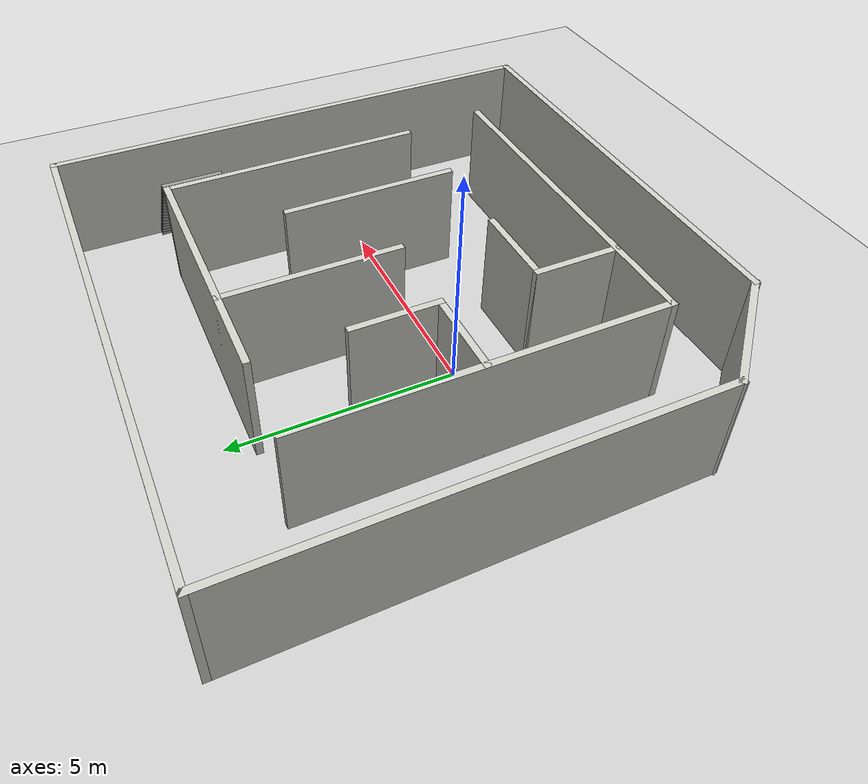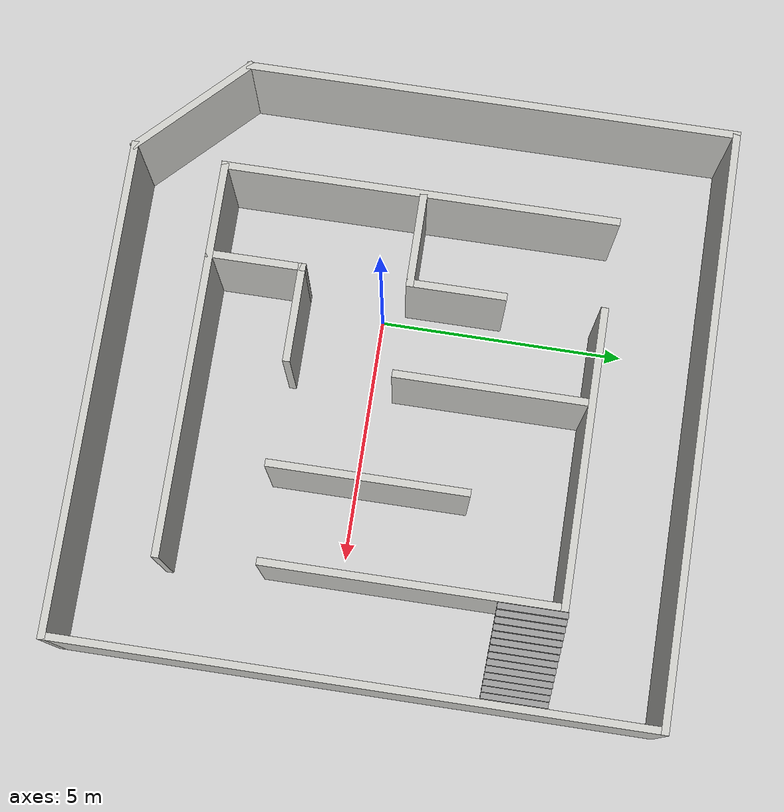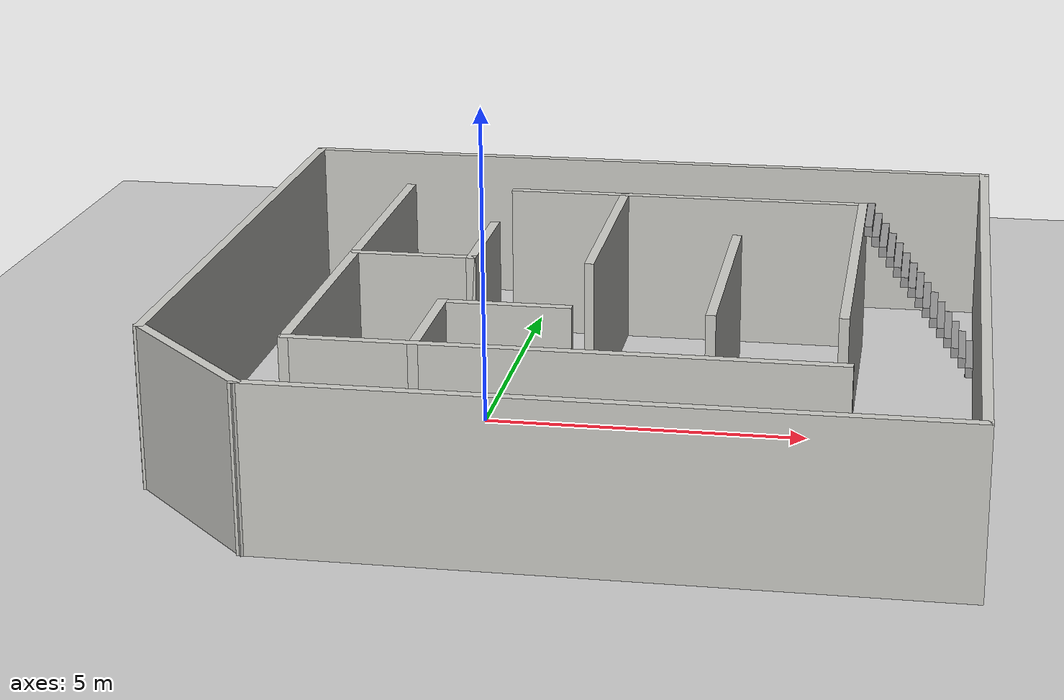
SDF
<sdf version='1.7'>
  <world name='default'>
    <include>
      <uri>model://ground_plane</uri>
    </include>

    <model name='gazebo_simplemaze'>
      <pose>1.62278 0.580179 0 0 -0 0</pose>
      <link name='Stairs_2'>
        <visual name='Stairs_2_Visual_0'>
          <pose>5.80485 3.1923 0.083333 0 -0 -1.5708</pose>
          <geometry>
            <box>
              <size>1.36518 0.122891 0.166667</size>
            </box>
          </geometry>
          <material>
            <script>
              <uri>file://media/materials/scripts/gazebo.material</uri>
              <name>Gazebo/Grey</name>
            </script>
            <ambient>1 1 1 1</ambient>
          </material>
          <meta>
            <layer>0</layer>
          </meta>
        </visual>
        <collision name='Stairs_2_Collision_0'>
          <geometry>
            <box>
              <size>1.36518 0.122891 0.166667</size>
            </box>
          </geometry>
          <pose>5.80485 3.1923 0.083333 0 -0 -1.5708</pose>
        </collision>
        <visual name='Stairs_2_Visual_1'>
          <pose>5.68196 3.1923 0.25 0 -0 -1.5708</pose>
          <geometry>
            <box>
              <size>1.36518 0.122891 0.166667</size>
            </box>
          </geometry>
          <material>
            <script>
              <uri>file://media/materials/scripts/gazebo.material</uri>
              <name>Gazebo/Grey</name>
            </script>
            <ambient>1 1 1 1</ambient>
          </material>
          <meta>
            <layer>0</layer>
          </meta>
        </visual>
        <collision name='Stairs_2_Collision_1'>
          <geometry>
            <box>
              <size>1.36518 0.122891 0.166667</size>
            </box>
          </geometry>
          <pose>5.68196 3.1923 0.25 0 -0 -1.5708</pose>
        </collision>
        <visual name='Stairs_2_Visual_2'>
          <pose>5.55907 3.1923 0.416667 0 -0 -1.5708</pose>
          <geometry>
            <box>
              <size>1.36518 0.122891 0.166667</size>
            </box>
          </geometry>
          <material>
            <script>
              <uri>file://media/materials/scripts/gazebo.material</uri>
              <name>Gazebo/Grey</name>
            </script>
            <ambient>1 1 1 1</ambient>
          </material>
          <meta>
            <layer>0</layer>
          </meta>
        </visual>
        <collision name='Stairs_2_Collision_2'>
          <geometry>
            <box>
              <size>1.36518 0.122891 0.166667</size>
            </box>
          </geometry>
          <pose>5.55907 3.1923 0.416667 0 -0 -1.5708</pose>
        </collision>
        <visual name='Stairs_2_Visual_3'>
          <pose>5.43617 3.1923 0.583333 0 -0 -1.5708</pose>
          <geometry>
            <box>
              <size>1.36518 0.122891 0.166667</size>
            </box>
          </geometry>
          <material>
            <script>
              <uri>file://media/materials/scripts/gazebo.material</uri>
              <name>Gazebo/Grey</name>
            </script>
            <ambient>1 1 1 1</ambient>
          </material>
          <meta>
            <layer>0</layer>
          </meta>
        </visual>
        <collision name='Stairs_2_Collision_3'>
          <geometry>
            <box>
              <size>1.36518 0.122891 0.166667</size>
            </box>
          </geometry>
          <pose>5.43617 3.1923 0.583333 0 -0 -1.5708</pose>
        </collision>
        <visual name='Stairs_2_Visual_4'>
          <pose>5.31328 3.1923 0.75 0 -0 -1.5708</pose>
          <geometry>
            <box>
              <size>1.36518 0.122891 0.166667</size>
            </box>
          </geometry>
          <material>
            <script>
              <uri>file://media/materials/scripts/gazebo.material</uri>
              <name>Gazebo/Grey</name>
            </script>
            <ambient>1 1 1 1</ambient>
          </material>
          <meta>
            <layer>0</layer>
          </meta>
        </visual>
        <collision name='Stairs_2_Collision_4'>
          <geometry>
            <box>
              <size>1.36518 0.122891 0.166667</size>
            </box>
          </geometry>
          <pose>5.31328 3.1923 0.75 0 -0 -1.5708</pose>
        </collision>
        <visual name='Stairs_2_Visual_5'>
          <pose>5.19039 3.1923 0.916667 0 -0 -1.5708</pose>
          <geometry>
            <box>
              <size>1.36518 0.122891 0.166667</size>
            </box>
          </geometry>
          <material>
            <script>
              <uri>file://media/materials/scripts/gazebo.material</uri>
              <name>Gazebo/Grey</name>
            </script>
            <ambient>1 1 1 1</ambient>
          </material>
          <meta>
            <layer>0</layer>
          </meta>
        </visual>
        <collision name='Stairs_2_Collision_5'>
          <geometry>
            <box>
              <size>1.36518 0.122891 0.166667</size>
            </box>
          </geometry>
          <pose>5.19039 3.1923 0.916667 0 -0 -1.5708</pose>
        </collision>
        <visual name='Stairs_2_Visual_6'>
          <pose>5.0675 3.1923 1.08333 0 -0 -1.5708</pose>
          <geometry>
            <box>
              <size>1.36518 0.122891 0.166667</size>
            </box>
          </geometry>
          <material>
            <script>
              <uri>file://media/materials/scripts/gazebo.material</uri>
              <name>Gazebo/Grey</name>
            </script>
            <ambient>1 1 1 1</ambient>
          </material>
          <meta>
            <layer>0</layer>
          </meta>
        </visual>
        <collision name='Stairs_2_Collision_6'>
          <geometry>
            <box>
              <size>1.36518 0.122891 0.166667</size>
            </box>
          </geometry>
          <pose>5.0675 3.1923 1.08333 0 -0 -1.5708</pose>
        </collision>
        <visual name='Stairs_2_Visual_7'>
          <pose>4.94461 3.1923 1.25 0 -0 -1.5708</pose>
          <geometry>
            <box>
              <size>1.36518 0.122891 0.166667</size>
            </box>
          </geometry>
          <material>
            <script>
              <uri>file://media/materials/scripts/gazebo.material</uri>
              <name>Gazebo/Grey</name>
            </script>
            <ambient>1 1 1 1</ambient>
          </material>
          <meta>
            <layer>0</layer>
          </meta>
        </visual>
        <collision name='Stairs_2_Collision_7'>
          <geometry>
            <box>
              <size>1.36518 0.122891 0.166667</size>
            </box>
          </geometry>
          <pose>4.94461 3.1923 1.25 0 -0 -1.5708</pose>
        </collision>
        <visual name='Stairs_2_Visual_8'>
          <pose>4.82172 3.1923 1.41667 0 -0 -1.5708</pose>
          <geometry>
            <box>
              <size>1.36518 0.122891 0.166667</size>
            </box>
          </geometry>
          <material>
            <script>
              <uri>file://media/materials/scripts/gazebo.material</uri>
              <name>Gazebo/Grey</name>
            </script>
            <ambient>1 1 1 1</ambient>
          </material>
          <meta>
            <layer>0</layer>
          </meta>
        </visual>
        <collision name='Stairs_2_Collision_8'>
          <geometry>
            <box>
              <size>1.36518 0.122891 0.166667</size>
            </box>
          </geometry>
          <pose>4.82172 3.1923 1.41667 0 -0 -1.5708</pose>
        </collision>
        <visual name='Stairs_2_Visual_9'>
          <pose>4.69883 3.1923 1.58333 0 -0 -1.5708</pose>
          <geometry>
            <box>
              <size>1.36518 0.122891 0.166667</size>
            </box>
          </geometry>
          <material>
            <script>
              <uri>file://media/materials/scripts/gazebo.material</uri>
              <name>Gazebo/Grey</name>
            </script>
            <ambient>1 1 1 1</ambient>
          </material>
          <meta>
            <layer>0</layer>
          </meta>
        </visual>
        <collision name='Stairs_2_Collision_9'>
          <geometry>
            <box>
              <size>1.36518 0.122891 0.166667</size>
            </box>
          </geometry>
          <pose>4.69883 3.1923 1.58333 0 -0 -1.5708</pose>
        </collision>
        <visual name='Stairs_2_Visual_10'>
          <pose>4.57594 3.1923 1.75 0 -0 -1.5708</pose>
          <geometry>
            <box>
              <size>1.36518 0.122891 0.166667</size>
            </box>
          </geometry>
          <material>
            <script>
              <uri>file://media/materials/scripts/gazebo.material</uri>
              <name>Gazebo/Grey</name>
            </script>
            <ambient>1 1 1 1</ambient>
          </material>
          <meta>
            <layer>0</layer>
          </meta>
        </visual>
        <collision name='Stairs_2_Collision_10'>
          <geometry>
            <box>
              <size>1.36518 0.122891 0.166667</size>
            </box>
          </geometry>
          <pose>4.57594 3.1923 1.75 0 -0 -1.5708</pose>
        </collision>
        <visual name='Stairs_2_Visual_11'>
          <pose>4.45305 3.1923 1.91667 0 -0 -1.5708</pose>
          <geometry>
            <box>
              <size>1.36518 0.122891 0.166667</size>
            </box>
          </geometry>
          <material>
            <script>
              <uri>file://media/materials/scripts/gazebo.material</uri>
              <name>Gazebo/Grey</name>
            </script>
            <ambient>1 1 1 1</ambient>
          </material>
          <meta>
            <layer>0</layer>
          </meta>
        </visual>
        <collision name='Stairs_2_Collision_11'>
          <geometry>
            <box>
              <size>1.36518 0.122891 0.166667</size>
            </box>
          </geometry>
          <pose>4.45305 3.1923 1.91667 0 -0 -1.5708</pose>
        </collision>
        <visual name='Stairs_2_Visual_12'>
          <pose>4.33016 3.1923 2.08333 0 -0 -1.5708</pose>
          <geometry>
            <box>
              <size>1.36518 0.122891 0.166667</size>
            </box>
          </geometry>
          <material>
            <script>
              <uri>file://media/materials/scripts/gazebo.material</uri>
              <name>Gazebo/Grey</name>
            </script>
            <ambient>1 1 1 1</ambient>
          </material>
          <meta>
            <layer>0</layer>
          </meta>
        </visual>
        <collision name='Stairs_2_Collision_12'>
          <geometry>
            <box>
              <size>1.36518 0.122891 0.166667</size>
            </box>
          </geometry>
          <pose>4.33016 3.1923 2.08333 0 -0 -1.5708</pose>
        </collision>
        <visual name='Stairs_2_Visual_13'>
          <pose>4.20727 3.1923 2.25 0 -0 -1.5708</pose>
          <geometry>
            <box>
              <size>1.36518 0.122891 0.166667</size>
            </box>
          </geometry>
          <material>
            <script>
              <uri>file://media/materials/scripts/gazebo.material</uri>
              <name>Gazebo/Grey</name>
            </script>
            <ambient>1 1 1 1</ambient>
          </material>
          <meta>
            <layer>0</layer>
          </meta>
        </visual>
        <collision name='Stairs_2_Collision_13'>
          <geometry>
            <box>
              <size>1.36518 0.122891 0.166667</size>
            </box>
          </geometry>
          <pose>4.20727 3.1923 2.25 0 -0 -1.5708</pose>
        </collision>
        <visual name='Stairs_2_Visual_14'>
          <pose>4.08437 3.1923 2.41667 0 -0 -1.5708</pose>
          <geometry>
            <box>
              <size>1.36518 0.122891 0.166667</size>
            </box>
          </geometry>
          <material>
            <script>
              <uri>file://media/materials/scripts/gazebo.material</uri>
              <name>Gazebo/Grey</name>
            </script>
            <ambient>1 1 1 1</ambient>
          </material>
          <meta>
            <layer>0</layer>
          </meta>
        </visual>
        <collision name='Stairs_2_Collision_14'>
          <geometry>
            <box>
              <size>1.36518 0.122891 0.166667</size>
            </box>
          </geometry>
          <pose>4.08437 3.1923 2.41667 0 -0 -1.5708</pose>
        </collision>
      </link>
      <link name='Wall_100'>
        <collision name='Wall_100_Collision'>
          <geometry>
            <box>
              <size>6 0.15 2.5</size>
            </box>
          </geometry>
          <pose>0 0 1.25 0 -0 0</pose>
        </collision>
        <visual name='Wall_100_Visual'>
          <pose>0 0 1.25 0 -0 0</pose>
          <geometry>
            <box>
              <size>6 0.15 2.5</size>
            </box>
          </geometry>
          <material>
            <script>
              <uri>file://media/materials/scripts/gazebo.material</uri>
              <name>Gazebo/CeilingTiled</name>
            </script>
            <ambient>0.921569 0.807843 0.615686 1</ambient>
          </material>
          <meta>
            <layer>0</layer>
          </meta>
        </visual>
        <pose>3.94053 0.865533 0 0 -0 -1.5708</pose>
      </link>
      <link name='Wall_103'>
        <collision name='Wall_103_Collision'>
          <geometry>
            <box>
              <size>4 0.15 2.5</size>
            </box>
          </geometry>
          <pose>0 0 1.25 0 -0 0</pose>
        </collision>
        <visual name='Wall_103_Visual'>
          <pose>0 0 1.25 0 -0 0</pose>
          <geometry>
            <box>
              <size>4 0.15 2.5</size>
            </box>
          </geometry>
          <material>
            <script>
              <uri>file://media/materials/scripts/gazebo.material</uri>
              <name>Gazebo/CeilingTiled</name>
            </script>
            <ambient>1 1 1 1</ambient>
          </material>
          <meta>
            <layer>0</layer>
          </meta>
        </visual>
        <pose>-0.059467 1.86553 0 0 -0 -1.5708</pose>
      </link>
      <link name='Wall_119'>
        <collision name='Wall_119_Collision'>
          <geometry>
            <box>
              <size>4 0.15 2.5</size>
            </box>
          </geometry>
          <pose>0 0 1.25 0 -0 0</pose>
        </collision>
        <visual name='Wall_119_Visual'>
          <pose>0 0 1.25 0 -0 0</pose>
          <geometry>
            <box>
              <size>4 0.15 2.5</size>
            </box>
          </geometry>
          <material>
            <script>
              <uri>file://media/materials/scripts/gazebo.material</uri>
              <name>Gazebo/CeilingTiled</name>
            </script>
            <ambient>1 1 1 1</ambient>
          </material>
          <meta>
            <layer>0</layer>
          </meta>
        </visual>
        <pose>2.04053 -0.284467 0 0 -0 1.5708</pose>
      </link>
      <link name='Wall_149'>
        <collision name='Wall_149_Collision'>
          <geometry>
            <box>
              <size>10 0.15 2.5</size>
            </box>
          </geometry>
          <pose>0 0 1.25 0 -0 0</pose>
        </collision>
        <visual name='Wall_149_Visual'>
          <pose>0 0 1.25 0 -0 0</pose>
          <geometry>
            <box>
              <size>10 0.15 2.5</size>
            </box>
          </geometry>
          <material>
            <script>
              <uri>file://media/materials/scripts/gazebo.material</uri>
              <name>Gazebo/CeilingTiled</name>
            </script>
            <ambient>0.760784 0.662745 0.627451 1</ambient>
          </material>
          <meta>
            <layer>0</layer>
          </meta>
        </visual>
        <pose>-5.90947 1.01553 0 0 -0 -1.5708</pose>
      </link>
      <link name='Wall_152'>
        <collision name='Wall_152_Collision'>
          <geometry>
            <box>
              <size>10 0.15 2.5</size>
            </box>
          </geometry>
          <pose>0 0 1.25 0 -0 0</pose>
        </collision>
        <visual name='Wall_152_Visual'>
          <pose>0 0 1.25 0 -0 0</pose>
          <geometry>
            <box>
              <size>10 0.15 2.5</size>
            </box>
          </geometry>
          <material>
            <script>
              <uri>file://media/materials/scripts/gazebo.material</uri>
              <name>Gazebo/CeilingTiled</name>
            </script>
            <ambient>0.760784 0.662745 0.627451 1</ambient>
          </material>
          <meta>
            <layer>0</layer>
          </meta>
        </visual>
        <pose>1.01553 -5.90947 0 0 -0 3.14159</pose>
      </link>
      <link name='Wall_153'>
        <collision name='Wall_153_Collision'>
          <geometry>
            <box>
              <size>2.97843 0.15 2.5</size>
            </box>
          </geometry>
          <pose>0 0 1.25 0 -0 0</pose>
        </collision>
        <visual name='Wall_153_Visual'>
          <pose>0 0 1.25 0 -0 0</pose>
          <geometry>
            <box>
              <size>2.97843 0.15 2.5</size>
            </box>
          </geometry>
          <material>
            <script>
              <uri>file://media/materials/scripts/gazebo.material</uri>
              <name>Gazebo/CeilingTiled</name>
            </script>
            <ambient>0.760784 0.662745 0.627451 1</ambient>
          </material>
          <meta>
            <layer>0</layer>
          </meta>
        </visual>
        <pose>-4.90947 -4.90947 0 0 -0 2.35619</pose>
      </link>
      <link name='Wall_74'>
        <collision name='Wall_74_Collision'>
          <geometry>
            <box>
              <size>12 0.15 2.5</size>
            </box>
          </geometry>
          <pose>0 0 1.25 0 -0 0</pose>
        </collision>
        <visual name='Wall_74_Visual'>
          <pose>0 0 1.25 0 -0 0</pose>
          <geometry>
            <box>
              <size>12 0.15 2.5</size>
            </box>
          </geometry>
          <material>
            <script>
              <uri>file://media/materials/scripts/gazebo.material</uri>
              <name>Gazebo/CeilingTiled</name>
            </script>
            <ambient>0.760784 0.662745 0.627451 1</ambient>
          </material>
          <meta>
            <layer>0</layer>
          </meta>
        </visual>
        <pose>5.94053 0.015533 0 0 -0 -1.5708</pose>
      </link>
      <link name='Wall_77'>
        <collision name='Wall_77_Collision'>
          <geometry>
            <box>
              <size>12 0.15 2.5</size>
            </box>
          </geometry>
          <pose>0 0 1.25 0 -0 0</pose>
        </collision>
        <visual name='Wall_77_Visual'>
          <pose>0 0 1.25 0 -0 0</pose>
          <geometry>
            <box>
              <size>12 0.15 2.5</size>
            </box>
          </geometry>
          <material>
            <script>
              <uri>file://media/materials/scripts/gazebo.material</uri>
              <name>Gazebo/CeilingTiled</name>
            </script>
            <ambient>0.760784 0.662745 0.627451 1</ambient>
          </material>
          <meta>
            <layer>0</layer>
          </meta>
        </visual>
        <pose>0.015533 5.94053 0 0 -0 3.14159</pose>
      </link>
      <link name='Wall_84'>
        <collision name='Wall_84_Collision'>
          <geometry>
            <box>
              <size>8 0.15 2.5</size>
            </box>
          </geometry>
          <pose>0 0 1.25 0 -0 0</pose>
        </collision>
        <visual name='Wall_84_Visual'>
          <pose>0 0 1.25 0 -0 0</pose>
          <geometry>
            <box>
              <size>8 0.15 2.5</size>
            </box>
          </geometry>
          <material>
            <script>
              <uri>file://media/materials/scripts/gazebo.material</uri>
              <name>Gazebo/CeilingTiled</name>
            </script>
            <ambient>0.921569 0.807843 0.615686 1</ambient>
          </material>
          <meta>
            <layer>0</layer>
          </meta>
        </visual>
        <pose>0.165533 -4.05947 0 0 -0 3.14159</pose>
      </link>
      <link name='Wall_87'>
        <collision name='Wall_87_Collision'>
          <geometry>
            <box>
              <size>2 0.15 2.5</size>
            </box>
          </geometry>
          <pose>0 0 1.25 0 -0 0</pose>
        </collision>
        <visual name='Wall_87_Visual'>
          <pose>0 0 1.25 0 -0 0</pose>
          <geometry>
            <box>
              <size>2 0.15 2.5</size>
            </box>
          </geometry>
          <material>
            <script>
              <uri>file://media/materials/scripts/gazebo.material</uri>
              <name>Gazebo/CeilingTiled</name>
            </script>
            <ambient>1 1 1 1</ambient>
          </material>
          <meta>
            <layer>0</layer>
          </meta>
        </visual>
        <pose>-1.90947 -3.13447 0 0 -0 1.5708</pose>
      </link>
      <link name='Wall_88'>
        <collision name='Wall_88_Collision'>
          <geometry>
            <box>
              <size>2 0.15 2.5</size>
            </box>
          </geometry>
          <pose>0 0 1.25 0 -0 0</pose>
        </collision>
        <visual name='Wall_88_Visual'>
          <pose>0 0 1.25 0 -0 0</pose>
          <geometry>
            <box>
              <size>2 0.15 2.5</size>
            </box>
          </geometry>
          <material>
            <script>
              <uri>file://media/materials/scripts/gazebo.material</uri>
              <name>Gazebo/CeilingTiled</name>
            </script>
            <ambient>1 1 1 1</ambient>
          </material>
          <meta>
            <layer>0</layer>
          </meta>
        </visual>
        <pose>-0.984467 -2.20947 0 0 -0 0</pose>
      </link>
      <link name='Wall_90'>
        <collision name='Wall_90_Collision'>
          <geometry>
            <box>
              <size>8 0.15 2.5</size>
            </box>
          </geometry>
          <pose>0 0 1.25 0 -0 0</pose>
        </collision>
        <visual name='Wall_90_Visual'>
          <pose>0 0 1.25 0 -0 0</pose>
          <geometry>
            <box>
              <size>8 0.15 2.5</size>
            </box>
          </geometry>
          <material>
            <script>
              <uri>file://media/materials/scripts/gazebo.material</uri>
              <name>Gazebo/CeilingTiled</name>
            </script>
            <ambient>0.921569 0.807843 0.615686 1</ambient>
          </material>
          <meta>
            <layer>0</layer>
          </meta>
        </visual>
        <pose>-3.75947 -0.134467 0 0 -0 1.5708</pose>
      </link>
      <link name='Wall_93'>
        <collision name='Wall_93_Collision'>
          <geometry>
            <box>
              <size>2 0.15 2.5</size>
            </box>
          </geometry>
          <pose>0 0 1.25 0 -0 0</pose>
        </collision>
        <visual name='Wall_93_Visual'>
          <pose>0 0 1.25 0 -0 0</pose>
          <geometry>
            <box>
              <size>2 0.15 2.5</size>
            </box>
          </geometry>
          <material>
            <script>
              <uri>file://media/materials/scripts/gazebo.material</uri>
              <name>Gazebo/CeilingTiled</name>
            </script>
            <ambient>1 1 1 1</ambient>
          </material>
          <meta>
            <layer>0</layer>
          </meta>
        </visual>
        <pose>-2.83447 -0.059467 0 0 -0 0</pose>
      </link>
      <link name='Wall_94'>
        <collision name='Wall_94_Collision'>
          <geometry>
            <box>
              <size>2 0.15 2.5</size>
            </box>
          </geometry>
          <pose>0 0 1.25 0 -0 0</pose>
        </collision>
        <visual name='Wall_94_Visual'>
          <pose>0 0 1.25 0 -0 0</pose>
          <geometry>
            <box>
              <size>2 0.15 2.5</size>
            </box>
          </geometry>
          <material>
            <script>
              <uri>file://media/materials/scripts/gazebo.material</uri>
              <name>Gazebo/CeilingTiled</name>
            </script>
            <ambient>1 1 1 1</ambient>
          </material>
          <meta>
            <layer>0</layer>
          </meta>
        </visual>
        <pose>-1.90947 0.865533 0 0 -0 1.5708</pose>
      </link>
      <link name='Wall_99'>
        <collision name='Wall_99_Collision'>
          <geometry>
            <box>
              <size>6 0.15 2.5</size>
            </box>
          </geometry>
          <pose>0 0 1.25 0 -0 0</pose>
        </collision>
        <visual name='Wall_99_Visual'>
          <pose>0 0 1.25 0 -0 0</pose>
          <geometry>
            <box>
              <size>6 0.15 2.5</size>
            </box>
          </geometry>
          <material>
            <script>
              <uri>file://media/materials/scripts/gazebo.material</uri>
              <name>Gazebo/CeilingTiled</name>
            </script>
            <ambient>0.921569 0.807843 0.615686 1</ambient>
          </material>
          <meta>
            <layer>0</layer>
          </meta>
        </visual>
        <pose>1.01553 3.79053 0 0 -0 0</pose>
      </link>
      <static>1</static>
    </model>

  </world>
</sdf>
